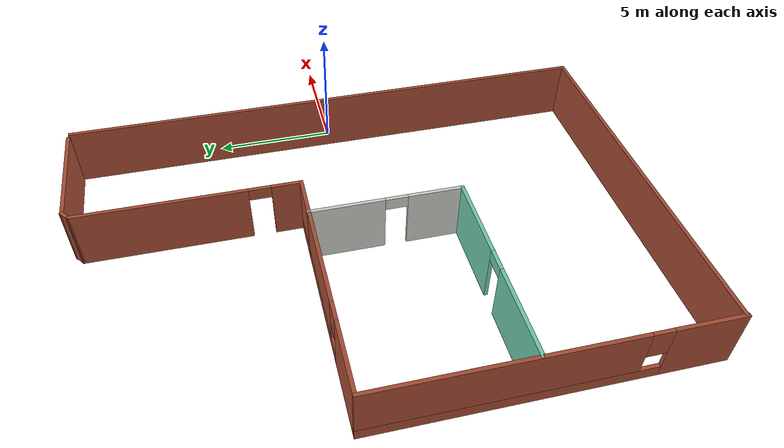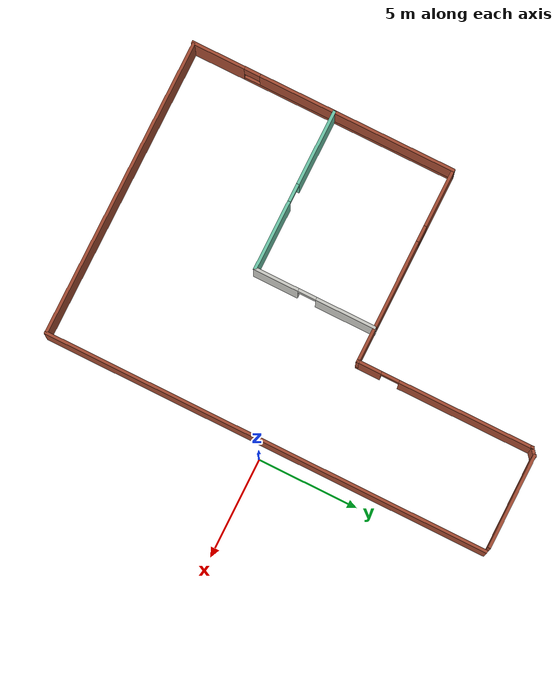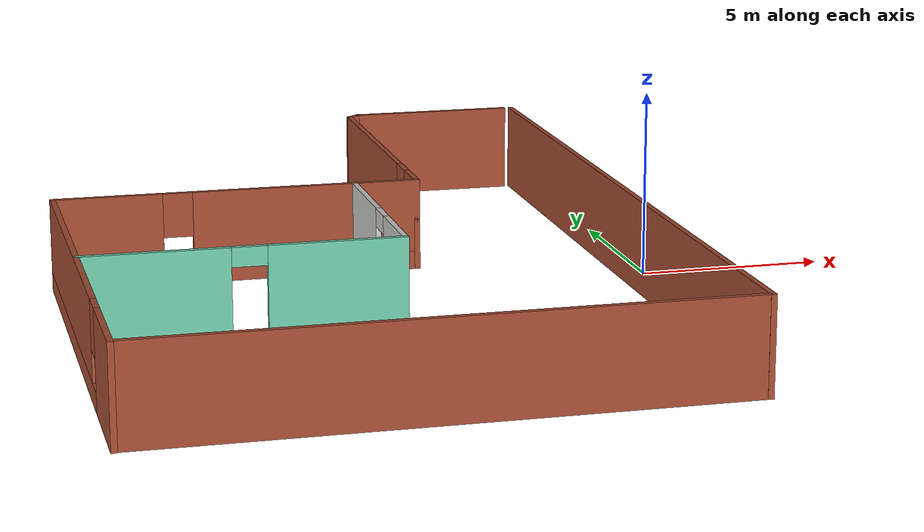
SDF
<?xml version='1.0'?>
<sdf version='1.6'>
  <model name='floor'>
    <link name='Wall_1'>
      <pose frame=''>-3.26123 11.2097 0 0 -0 0</pose>
      <self_collide>0</self_collide>
      <kinematic>0</kinematic>
      <enable_wind>0</enable_wind>
      <visual name='Wall_1_Visual'>
        <pose frame=''>0 0 1.25 0 -0 0</pose>
        <geometry>
          <box>
            <size>4.75 0.15 2.5</size>
          </box>
        </geometry>
        <material>
          <script>
            <uri>file://media/materials/scripts/gazebo.material</uri>
            <name>Gazebo/Bricks</name>
          </script>
          <ambient>0.435294 0.796078 0.67451 1</ambient>
        </material>
        <meta>
          <layer>0</layer>
        </meta>
        <transparency>0</transparency>
        <cast_shadows>1</cast_shadows>
      </visual>
      <collision name='Wall_1_Collision'>
        <laser_retro>0</laser_retro>
        <max_contacts>10</max_contacts>
        <pose frame=''>0 0 1.25 0 -0 0</pose>
        <geometry>
          <box>
            <size>4.75 0.15 2.5</size>
          </box>
        </geometry>
        <surface>
          <friction>
            <ode>
              <mu>1</mu>
              <mu2>1</mu2>
              <fdir1>0 0 0</fdir1>
              <slip1>0</slip1>
              <slip2>0</slip2>
            </ode>
            <torsional>
              <coefficient>1</coefficient>
              <patch_radius>0</patch_radius>
              <surface_radius>0</surface_radius>
              <use_patch_radius>1</use_patch_radius>
              <ode>
                <slip>0</slip>
              </ode>
            </torsional>
          </friction>
          <bounce>
            <restitution_coefficient>0</restitution_coefficient>
            <threshold>1e+06</threshold>
          </bounce>
          <contact>
            <collide_without_contact>0</collide_without_contact>
            <collide_without_contact_bitmask>1</collide_without_contact_bitmask>
            <collide_bitmask>1</collide_bitmask>
            <ode>
              <soft_cfm>0</soft_cfm>
              <soft_erp>0.2</soft_erp>
              <kp>1e+13</kp>
              <kd>1</kd>
              <max_vel>0.01</max_vel>
              <min_depth>0</min_depth>
            </ode>
            <bullet>
              <split_impulse>1</split_impulse>
              <split_impulse_penetration_threshold>-0.01</split_impulse_penetration_threshold>
              <soft_cfm>0</soft_cfm>
              <soft_erp>0.2</soft_erp>
              <kp>1e+13</kp>
              <kd>1</kd>
            </bullet>
          </contact>
        </surface>
      </collision>
    </link>
    <link name='Wall_10'>
      <pose frame=''>-5.71122 11.0847 0 0 -0 0.694738</pose>
      <self_collide>0</self_collide>
      <kinematic>0</kinematic>
      <enable_wind>0</enable_wind>
      <visual name='Wall_10_Visual'>
        <pose frame=''>0 0 1.25 0 -0 0</pose>
        <geometry>
          <box>
            <size>0.540512 0.15 2.5</size>
          </box>
        </geometry>
        <material>
          <script>
            <uri>file://media/materials/scripts/gazebo.material</uri>
            <name>Gazebo/Bricks</name>
          </script>
          <ambient>0.435294 0.796078 0.67451 1</ambient>
        </material>
        <meta>
          <layer>0</layer>
        </meta>
        <transparency>0</transparency>
        <cast_shadows>1</cast_shadows>
      </visual>
      <collision name='Wall_10_Collision'>
        <laser_retro>0</laser_retro>
        <max_contacts>10</max_contacts>
        <pose frame=''>0 0 1.25 0 -0 0</pose>
        <geometry>
          <box>
            <size>0.540512 0.15 2.5</size>
          </box>
        </geometry>
        <surface>
          <friction>
            <ode>
              <mu>1</mu>
              <mu2>1</mu2>
              <fdir1>0 0 0</fdir1>
              <slip1>0</slip1>
              <slip2>0</slip2>
            </ode>
            <torsional>
              <coefficient>1</coefficient>
              <patch_radius>0</patch_radius>
              <surface_radius>0</surface_radius>
              <use_patch_radius>1</use_patch_radius>
              <ode>
                <slip>0</slip>
              </ode>
            </torsional>
          </friction>
          <bounce>
            <restitution_coefficient>0</restitution_coefficient>
            <threshold>1e+06</threshold>
          </bounce>
          <contact>
            <collide_without_contact>0</collide_without_contact>
            <collide_without_contact_bitmask>1</collide_without_contact_bitmask>
            <collide_bitmask>1</collide_bitmask>
            <ode>
              <soft_cfm>0</soft_cfm>
              <soft_erp>0.2</soft_erp>
              <kp>1e+13</kp>
              <kd>1</kd>
              <max_vel>0.01</max_vel>
              <min_depth>0</min_depth>
            </ode>
            <bullet>
              <split_impulse>1</split_impulse>
              <split_impulse_penetration_threshold>-0.01</split_impulse_penetration_threshold>
              <soft_cfm>0</soft_cfm>
              <soft_erp>0.2</soft_erp>
              <kp>1e+13</kp>
              <kd>1</kd>
            </bullet>
          </contact>
        </surface>
      </collision>
    </link>
    <link name='Wall_12'>
      <pose frame=''>-7.58378 -0.937122 0 0 0 -1.5708</pose>
      <self_collide>0</self_collide>
      <kinematic>0</kinematic>
      <enable_wind>0</enable_wind>
      <visual name='Wall_12_Visual_0'>
        <pose frame=''>-1.59262 0 1.25 0 -0 0</pose>
        <geometry>
          <box>
            <size>3.06475 0.15 2.5</size>
          </box>
        </geometry>
        <material>
          <script>
            <uri>file://media/materials/scripts/gazebo.material</uri>
            <name>Gazebo/CeilingTiled</name>
          </script>
          <ambient>0.435294 0.796078 0.67451 1</ambient>
        </material>
        <meta>
          <layer>0</layer>
        </meta>
        <transparency>0</transparency>
        <cast_shadows>1</cast_shadows>
      </visual>
      <visual name='Wall_12_Visual_1'>
        <pose frame=''>1.98238 0 1.25 0 -0 0</pose>
        <geometry>
          <box>
            <size>2.28525 0.15 2.5</size>
          </box>
        </geometry>
        <material>
          <script>
            <uri>file://media/materials/scripts/gazebo.material</uri>
            <name>Gazebo/CeilingTiled</name>
          </script>
          <ambient>0.435294 0.796078 0.67451 1</ambient>
        </material>
        <meta>
          <layer>0</layer>
        </meta>
        <transparency>0</transparency>
        <cast_shadows>1</cast_shadows>
      </visual>
      <visual name='Wall_12_Visual_2'>
        <pose frame=''>0.389755 0 2.25 0 -0 0</pose>
        <geometry>
          <box>
            <size>0.9 0.15 0.5</size>
          </box>
        </geometry>
        <material>
          <script>
            <uri>file://media/materials/scripts/gazebo.material</uri>
            <name>Gazebo/CeilingTiled</name>
          </script>
          <ambient>0.435294 0.796078 0.67451 1</ambient>
        </material>
        <meta>
          <layer>0</layer>
        </meta>
        <transparency>0</transparency>
        <cast_shadows>1</cast_shadows>
      </visual>
      <collision name='Wall_12_Collision_0'>
        <laser_retro>0</laser_retro>
        <max_contacts>10</max_contacts>
        <pose frame=''>-1.59262 0 1.25 0 -0 0</pose>
        <geometry>
          <box>
            <size>3.06475 0.15 2.5</size>
          </box>
        </geometry>
        <surface>
          <friction>
            <ode>
              <mu>1</mu>
              <mu2>1</mu2>
              <fdir1>0 0 0</fdir1>
              <slip1>0</slip1>
              <slip2>0</slip2>
            </ode>
            <torsional>
              <coefficient>1</coefficient>
              <patch_radius>0</patch_radius>
              <surface_radius>0</surface_radius>
              <use_patch_radius>1</use_patch_radius>
              <ode>
                <slip>0</slip>
              </ode>
            </torsional>
          </friction>
          <bounce>
            <restitution_coefficient>0</restitution_coefficient>
            <threshold>1e+06</threshold>
          </bounce>
          <contact>
            <collide_without_contact>0</collide_without_contact>
            <collide_without_contact_bitmask>1</collide_without_contact_bitmask>
            <collide_bitmask>1</collide_bitmask>
            <ode>
              <soft_cfm>0</soft_cfm>
              <soft_erp>0.2</soft_erp>
              <kp>1e+13</kp>
              <kd>1</kd>
              <max_vel>0.01</max_vel>
              <min_depth>0</min_depth>
            </ode>
            <bullet>
              <split_impulse>1</split_impulse>
              <split_impulse_penetration_threshold>-0.01</split_impulse_penetration_threshold>
              <soft_cfm>0</soft_cfm>
              <soft_erp>0.2</soft_erp>
              <kp>1e+13</kp>
              <kd>1</kd>
            </bullet>
          </contact>
        </surface>
      </collision>
      <collision name='Wall_12_Collision_1'>
        <laser_retro>0</laser_retro>
        <max_contacts>10</max_contacts>
        <pose frame=''>1.98238 0 1.25 0 -0 0</pose>
        <geometry>
          <box>
            <size>2.28525 0.15 2.5</size>
          </box>
        </geometry>
        <surface>
          <friction>
            <ode>
              <mu>1</mu>
              <mu2>1</mu2>
              <fdir1>0 0 0</fdir1>
              <slip1>0</slip1>
              <slip2>0</slip2>
            </ode>
            <torsional>
              <coefficient>1</coefficient>
              <patch_radius>0</patch_radius>
              <surface_radius>0</surface_radius>
              <use_patch_radius>1</use_patch_radius>
              <ode>
                <slip>0</slip>
              </ode>
            </torsional>
          </friction>
          <bounce>
            <restitution_coefficient>0</restitution_coefficient>
            <threshold>1e+06</threshold>
          </bounce>
          <contact>
            <collide_without_contact>0</collide_without_contact>
            <collide_without_contact_bitmask>1</collide_without_contact_bitmask>
            <collide_bitmask>1</collide_bitmask>
            <ode>
              <soft_cfm>0</soft_cfm>
              <soft_erp>0.2</soft_erp>
              <kp>1e+13</kp>
              <kd>1</kd>
              <max_vel>0.01</max_vel>
              <min_depth>0</min_depth>
            </ode>
            <bullet>
              <split_impulse>1</split_impulse>
              <split_impulse_penetration_threshold>-0.01</split_impulse_penetration_threshold>
              <soft_cfm>0</soft_cfm>
              <soft_erp>0.2</soft_erp>
              <kp>1e+13</kp>
              <kd>1</kd>
            </bullet>
          </contact>
        </surface>
      </collision>
      <collision name='Wall_12_Collision_2'>
        <laser_retro>0</laser_retro>
        <max_contacts>10</max_contacts>
        <pose frame=''>0.389755 0 2.25 0 -0 0</pose>
        <geometry>
          <box>
            <size>0.9 0.15 0.5</size>
          </box>
        </geometry>
        <surface>
          <friction>
            <ode>
              <mu>1</mu>
              <mu2>1</mu2>
              <fdir1>0 0 0</fdir1>
              <slip1>0</slip1>
              <slip2>0</slip2>
            </ode>
            <torsional>
              <coefficient>1</coefficient>
              <patch_radius>0</patch_radius>
              <surface_radius>0</surface_radius>
              <use_patch_radius>1</use_patch_radius>
              <ode>
                <slip>0</slip>
              </ode>
            </torsional>
          </friction>
          <bounce>
            <restitution_coefficient>0</restitution_coefficient>
            <threshold>1e+06</threshold>
          </bounce>
          <contact>
            <collide_without_contact>0</collide_without_contact>
            <collide_without_contact_bitmask>1</collide_without_contact_bitmask>
            <collide_bitmask>1</collide_bitmask>
            <ode>
              <soft_cfm>0</soft_cfm>
              <soft_erp>0.2</soft_erp>
              <kp>1e+13</kp>
              <kd>1</kd>
              <max_vel>0.01</max_vel>
              <min_depth>0</min_depth>
            </ode>
            <bullet>
              <split_impulse>1</split_impulse>
              <split_impulse_penetration_threshold>-0.01</split_impulse_penetration_threshold>
              <soft_cfm>0</soft_cfm>
              <soft_erp>0.2</soft_erp>
              <kp>1e+13</kp>
              <kd>1</kd>
            </bullet>
          </contact>
        </surface>
      </collision>
    </link>
    <link name='Wall_15'>
      <pose frame=''>-11.6338 -3.98712 0 0 -0 3.14159</pose>
      <self_collide>0</self_collide>
      <kinematic>0</kinematic>
      <enable_wind>0</enable_wind>
      <visual name='Wall_15_Visual_0'>
        <pose frame=''>-2.35227 0 1.25 0 -0 0</pose>
        <geometry>
          <box>
            <size>3.54546 0.15 2.5</size>
          </box>
        </geometry>
        <material>
          <script>
            <uri>file://media/materials/scripts/gazebo.material</uri>
            <name>Gazebo/Grey</name>
          </script>
          <ambient>0.435294 0.796078 0.67451 1</ambient>
        </material>
        <meta>
          <layer>0</layer>
        </meta>
        <transparency>0</transparency>
        <cast_shadows>1</cast_shadows>
      </visual>
      <visual name='Wall_15_Visual_1'>
        <pose frame=''>2.22273 0 1.25 0 -0 0</pose>
        <geometry>
          <box>
            <size>3.80455 0.15 2.5</size>
          </box>
        </geometry>
        <material>
          <script>
            <uri>file://media/materials/scripts/gazebo.material</uri>
            <name>Gazebo/Grey</name>
          </script>
          <ambient>0.435294 0.796078 0.67451 1</ambient>
        </material>
        <meta>
          <layer>0</layer>
        </meta>
        <transparency>0</transparency>
        <cast_shadows>1</cast_shadows>
      </visual>
      <visual name='Wall_15_Visual_2'>
        <pose frame=''>-0.129545 0 2.25 0 -0 0</pose>
        <geometry>
          <box>
            <size>0.9 0.15 0.5</size>
          </box>
        </geometry>
        <material>
          <script>
            <uri>file://media/materials/scripts/gazebo.material</uri>
            <name>Gazebo/Grey</name>
          </script>
          <ambient>0.435294 0.796078 0.67451 1</ambient>
        </material>
        <meta>
          <layer>0</layer>
        </meta>
        <transparency>0</transparency>
        <cast_shadows>1</cast_shadows>
      </visual>
      <collision name='Wall_15_Collision_0'>
        <laser_retro>0</laser_retro>
        <max_contacts>10</max_contacts>
        <pose frame=''>-2.35227 0 1.25 0 -0 0</pose>
        <geometry>
          <box>
            <size>3.54546 0.15 2.5</size>
          </box>
        </geometry>
        <surface>
          <friction>
            <ode>
              <mu>1</mu>
              <mu2>1</mu2>
              <fdir1>0 0 0</fdir1>
              <slip1>0</slip1>
              <slip2>0</slip2>
            </ode>
            <torsional>
              <coefficient>1</coefficient>
              <patch_radius>0</patch_radius>
              <surface_radius>0</surface_radius>
              <use_patch_radius>1</use_patch_radius>
              <ode>
                <slip>0</slip>
              </ode>
            </torsional>
          </friction>
          <bounce>
            <restitution_coefficient>0</restitution_coefficient>
            <threshold>1e+06</threshold>
          </bounce>
          <contact>
            <collide_without_contact>0</collide_without_contact>
            <collide_without_contact_bitmask>1</collide_without_contact_bitmask>
            <collide_bitmask>1</collide_bitmask>
            <ode>
              <soft_cfm>0</soft_cfm>
              <soft_erp>0.2</soft_erp>
              <kp>1e+13</kp>
              <kd>1</kd>
              <max_vel>0.01</max_vel>
              <min_depth>0</min_depth>
            </ode>
            <bullet>
              <split_impulse>1</split_impulse>
              <split_impulse_penetration_threshold>-0.01</split_impulse_penetration_threshold>
              <soft_cfm>0</soft_cfm>
              <soft_erp>0.2</soft_erp>
              <kp>1e+13</kp>
              <kd>1</kd>
            </bullet>
          </contact>
        </surface>
      </collision>
      <collision name='Wall_15_Collision_1'>
        <laser_retro>0</laser_retro>
        <max_contacts>10</max_contacts>
        <pose frame=''>2.22273 0 1.25 0 -0 0</pose>
        <geometry>
          <box>
            <size>3.80455 0.15 2.5</size>
          </box>
        </geometry>
        <surface>
          <friction>
            <ode>
              <mu>1</mu>
              <mu2>1</mu2>
              <fdir1>0 0 0</fdir1>
              <slip1>0</slip1>
              <slip2>0</slip2>
            </ode>
            <torsional>
              <coefficient>1</coefficient>
              <patch_radius>0</patch_radius>
              <surface_radius>0</surface_radius>
              <use_patch_radius>1</use_patch_radius>
              <ode>
                <slip>0</slip>
              </ode>
            </torsional>
          </friction>
          <bounce>
            <restitution_coefficient>0</restitution_coefficient>
            <threshold>1e+06</threshold>
          </bounce>
          <contact>
            <collide_without_contact>0</collide_without_contact>
            <collide_without_contact_bitmask>1</collide_without_contact_bitmask>
            <collide_bitmask>1</collide_bitmask>
            <ode>
              <soft_cfm>0</soft_cfm>
              <soft_erp>0.2</soft_erp>
              <kp>1e+13</kp>
              <kd>1</kd>
              <max_vel>0.01</max_vel>
              <min_depth>0</min_depth>
            </ode>
            <bullet>
              <split_impulse>1</split_impulse>
              <split_impulse_penetration_threshold>-0.01</split_impulse_penetration_threshold>
              <soft_cfm>0</soft_cfm>
              <soft_erp>0.2</soft_erp>
              <kp>1e+13</kp>
              <kd>1</kd>
            </bullet>
          </contact>
        </surface>
      </collision>
      <collision name='Wall_15_Collision_2'>
        <laser_retro>0</laser_retro>
        <max_contacts>10</max_contacts>
        <pose frame=''>-0.129545 0 2.25 0 -0 0</pose>
        <geometry>
          <box>
            <size>0.9 0.15 0.5</size>
          </box>
        </geometry>
        <surface>
          <friction>
            <ode>
              <mu>1</mu>
              <mu2>1</mu2>
              <fdir1>0 0 0</fdir1>
              <slip1>0</slip1>
              <slip2>0</slip2>
            </ode>
            <torsional>
              <coefficient>1</coefficient>
              <patch_radius>0</patch_radius>
              <surface_radius>0</surface_radius>
              <use_patch_radius>1</use_patch_radius>
              <ode>
                <slip>0</slip>
              </ode>
            </torsional>
          </friction>
          <bounce>
            <restitution_coefficient>0</restitution_coefficient>
            <threshold>1e+06</threshold>
          </bounce>
          <contact>
            <collide_without_contact>0</collide_without_contact>
            <collide_without_contact_bitmask>1</collide_without_contact_bitmask>
            <collide_bitmask>1</collide_bitmask>
            <ode>
              <soft_cfm>0</soft_cfm>
              <soft_erp>0.2</soft_erp>
              <kp>1e+13</kp>
              <kd>1</kd>
              <max_vel>0.01</max_vel>
              <min_depth>0</min_depth>
            </ode>
            <bullet>
              <split_impulse>1</split_impulse>
              <split_impulse_penetration_threshold>-0.01</split_impulse_penetration_threshold>
              <soft_cfm>0</soft_cfm>
              <soft_erp>0.2</soft_erp>
              <kp>1e+13</kp>
              <kd>1</kd>
            </bullet>
          </contact>
        </surface>
      </collision>
    </link>
    <link name='Wall_1_clone'>
      <pose frame=''>-8.2177 -11.2047 0 0 -0 0</pose>
      <self_collide>0</self_collide>
      <kinematic>0</kinematic>
      <enable_wind>0</enable_wind>
      <gravity>1</gravity>
      <inertial>
        <mass>1</mass>
        <pose frame=''>0 0 0 0 -0 0</pose>
        <inertia>
          <ixx>1</ixx>
          <ixy>0</ixy>
          <ixz>0</ixz>
          <iyy>1</iyy>
          <iyz>0</iyz>
          <izz>1</izz>
        </inertia>
      </inertial>
      <visual name='Wall_1_Visual'>
        <pose frame=''>0 0 1.25 0 -0 0</pose>
        <geometry>
          <box>
            <size>15 0.15 2.5</size>
          </box>
        </geometry>
        <material>
          <script>
            <uri>file://media/materials/scripts/gazebo.material</uri>
            <name>Gazebo/Bricks</name>
          </script>
          <ambient>0.435 0.796 0.675 1</ambient>
          <shader type='vertex'>
            <normal_map>__default__</normal_map>
          </shader>
          <diffuse>1 1 1 1</diffuse>
          <specular>0.2 0.2 0.2 1</specular>
          <emissive>0 0 0 1</emissive>
        </material>
        <meta>
          <layer>0</layer>
        </meta>
        <transparency>0</transparency>
        <cast_shadows>1</cast_shadows>
      </visual>
      <collision name='Wall_1_Collision'>
        <laser_retro>0</laser_retro>
        <max_contacts>10</max_contacts>
        <pose frame=''>0 0 1.25 0 -0 0</pose>
        <geometry>
          <box>
            <size>15 0.15 2.5</size>
          </box>
        </geometry>
        <surface>
          <friction>
            <ode>
              <mu>1</mu>
              <mu2>1</mu2>
              <fdir1>0 0 0</fdir1>
              <slip1>0</slip1>
              <slip2>0</slip2>
            </ode>
            <torsional>
              <coefficient>1</coefficient>
              <patch_radius>0</patch_radius>
              <surface_radius>0</surface_radius>
              <use_patch_radius>1</use_patch_radius>
              <ode>
                <slip>0</slip>
              </ode>
            </torsional>
          </friction>
          <bounce>
            <restitution_coefficient>0</restitution_coefficient>
            <threshold>1e+06</threshold>
          </bounce>
          <contact>
            <collide_without_contact>0</collide_without_contact>
            <collide_without_contact_bitmask>1</collide_without_contact_bitmask>
            <collide_bitmask>1</collide_bitmask>
            <ode>
              <soft_cfm>0</soft_cfm>
              <soft_erp>0.2</soft_erp>
              <kp>1e+13</kp>
              <kd>1</kd>
              <max_vel>0.01</max_vel>
              <min_depth>0</min_depth>
            </ode>
            <bullet>
              <split_impulse>1</split_impulse>
              <split_impulse_penetration_threshold>-0.01</split_impulse_penetration_threshold>
              <soft_cfm>0</soft_cfm>
              <soft_erp>0.2</soft_erp>
              <kp>1e+13</kp>
              <kd>1</kd>
            </bullet>
          </contact>
        </surface>
      </collision>
    </link>
    <link name='Wall_2'>
      <pose frame=''>-0.689664 -0.033023 0 0 0 -1.5708</pose>
      <self_collide>0</self_collide>
      <kinematic>0</kinematic>
      <enable_wind>0</enable_wind>
      <inertial>
        <inertia>
          <ixx>0</ixx>
          <ixy>0</ixy>
          <ixz>0</ixz>
          <iyy>0</iyy>
          <iyz>0</iyz>
          <izz>0</izz>
        </inertia>
        <mass>0</mass>
        <pose frame=''>0 0 0 0 -0 0</pose>
      </inertial>
      <gravity>1</gravity>
      <visual name='Wall_2_Visual'>
        <pose frame=''>0 0 1.25 0 -0 0</pose>
        <geometry>
          <box>
            <size>22.5 0.15 2.5</size>
          </box>
        </geometry>
        <material>
          <script>
            <uri>file://media/materials/scripts/gazebo.material</uri>
            <name>Gazebo/Bricks</name>
          </script>
          <ambient>0.435 0.796 0.675 1</ambient>
          <shader type='vertex'>
            <normal_map>__default__</normal_map>
          </shader>
          <diffuse>1 1 1 1</diffuse>
          <specular>0.2 0.2 0.2 1</specular>
          <emissive>0 0 0 1</emissive>
        </material>
        <meta>
          <layer>0</layer>
        </meta>
        <transparency>0</transparency>
        <cast_shadows>1</cast_shadows>
      </visual>
      <collision name='Wall_2_Collision'>
        <laser_retro>0</laser_retro>
        <max_contacts>10</max_contacts>
        <pose frame=''>0 0 1.25 0 -0 0</pose>
        <geometry>
          <box>
            <size>22.5 0.15 2.5</size>
          </box>
        </geometry>
        <surface>
          <friction>
            <ode>
              <mu>1</mu>
              <mu2>1</mu2>
              <fdir1>0 0 0</fdir1>
              <slip1>0</slip1>
              <slip2>0</slip2>
            </ode>
            <torsional>
              <coefficient>1</coefficient>
              <patch_radius>0</patch_radius>
              <surface_radius>0</surface_radius>
              <use_patch_radius>1</use_patch_radius>
              <ode>
                <slip>0</slip>
              </ode>
            </torsional>
          </friction>
          <bounce>
            <restitution_coefficient>0</restitution_coefficient>
            <threshold>1e+06</threshold>
          </bounce>
          <contact>
            <collide_without_contact>0</collide_without_contact>
            <collide_without_contact_bitmask>1</collide_without_contact_bitmask>
            <collide_bitmask>1</collide_bitmask>
            <ode>
              <soft_cfm>0</soft_cfm>
              <soft_erp>0.2</soft_erp>
              <kp>1e+13</kp>
              <kd>1</kd>
              <max_vel>0.01</max_vel>
              <min_depth>0</min_depth>
            </ode>
            <bullet>
              <split_impulse>1</split_impulse>
              <split_impulse_penetration_threshold>-0.01</split_impulse_penetration_threshold>
              <soft_cfm>0</soft_cfm>
              <soft_erp>0.2</soft_erp>
              <kp>1e+13</kp>
              <kd>1</kd>
            </bullet>
          </contact>
        </surface>
      </collision>
    </link>
    <link name='Wall_6'>
      <pose frame=''>-15.7112 -4.56531 0 0 -0 1.5708</pose>
      <self_collide>0</self_collide>
      <kinematic>0</kinematic>
      <enable_wind>0</enable_wind>
      <visual name='Wall_6_Visual_0'>
        <pose frame=''>-5.38753 0 1.25 0 -0 0</pose>
        <geometry>
          <box>
            <size>2.72495 0.15 2.5</size>
          </box>
        </geometry>
        <material>
          <script>
            <uri>file://media/materials/scripts/gazebo.material</uri>
            <name>Gazebo/Bricks</name>
          </script>
          <ambient>0.435294 0.796078 0.67451 1</ambient>
        </material>
        <meta>
          <layer>0</layer>
        </meta>
        <transparency>0</transparency>
        <cast_shadows>1</cast_shadows>
      </visual>
      <visual name='Wall_6_Visual_1'>
        <pose frame=''>1.36247 0 0.25 0 -0 0</pose>
        <geometry>
          <box>
            <size>10.7751 0.15 0.5</size>
          </box>
        </geometry>
        <material>
          <script>
            <uri>file://media/materials/scripts/gazebo.material</uri>
            <name>Gazebo/Bricks</name>
          </script>
          <ambient>0.435294 0.796078 0.67451 1</ambient>
        </material>
        <meta>
          <layer>0</layer>
        </meta>
        <transparency>0</transparency>
        <cast_shadows>1</cast_shadows>
      </visual>
      <visual name='Wall_6_Visual_2'>
        <pose frame=''>1.76247 0 1.5 0 -0 0</pose>
        <geometry>
          <box>
            <size>9.97505 0.15 2</size>
          </box>
        </geometry>
        <material>
          <script>
            <uri>file://media/materials/scripts/gazebo.material</uri>
            <name>Gazebo/Bricks</name>
          </script>
          <ambient>0.435294 0.796078 0.67451 1</ambient>
        </material>
        <meta>
          <layer>0</layer>
        </meta>
        <transparency>0</transparency>
        <cast_shadows>1</cast_shadows>
      </visual>
      <visual name='Wall_6_Visual_3'>
        <pose frame=''>-3.62505 0 1.9 0 -0 0</pose>
        <geometry>
          <box>
            <size>0.8 0.15 1.2</size>
          </box>
        </geometry>
        <material>
          <script>
            <uri>file://media/materials/scripts/gazebo.material</uri>
            <name>Gazebo/Bricks</name>
          </script>
          <ambient>0.435294 0.796078 0.67451 1</ambient>
        </material>
        <meta>
          <layer>0</layer>
        </meta>
        <transparency>0</transparency>
        <cast_shadows>1</cast_shadows>
      </visual>
      <collision name='Wall_6_Collision_1'>
        <laser_retro>0</laser_retro>
        <max_contacts>10</max_contacts>
        <pose frame=''>1.36247 0 0.25 0 -0 0</pose>
        <geometry>
          <box>
            <size>10.7751 0.15 0.5</size>
          </box>
        </geometry>
        <surface>
          <friction>
            <ode>
              <mu>1</mu>
              <mu2>1</mu2>
              <fdir1>0 0 0</fdir1>
              <slip1>0</slip1>
              <slip2>0</slip2>
            </ode>
            <torsional>
              <coefficient>1</coefficient>
              <patch_radius>0</patch_radius>
              <surface_radius>0</surface_radius>
              <use_patch_radius>1</use_patch_radius>
              <ode>
                <slip>0</slip>
              </ode>
            </torsional>
          </friction>
          <bounce>
            <restitution_coefficient>0</restitution_coefficient>
            <threshold>1e+06</threshold>
          </bounce>
          <contact>
            <collide_without_contact>0</collide_without_contact>
            <collide_without_contact_bitmask>1</collide_without_contact_bitmask>
            <collide_bitmask>1</collide_bitmask>
            <ode>
              <soft_cfm>0</soft_cfm>
              <soft_erp>0.2</soft_erp>
              <kp>1e+13</kp>
              <kd>1</kd>
              <max_vel>0.01</max_vel>
              <min_depth>0</min_depth>
            </ode>
            <bullet>
              <split_impulse>1</split_impulse>
              <split_impulse_penetration_threshold>-0.01</split_impulse_penetration_threshold>
              <soft_cfm>0</soft_cfm>
              <soft_erp>0.2</soft_erp>
              <kp>1e+13</kp>
              <kd>1</kd>
            </bullet>
          </contact>
        </surface>
      </collision>
      <collision name='Wall_6_Collision_0'>
        <laser_retro>0</laser_retro>
        <max_contacts>10</max_contacts>
        <pose frame=''>-5.38753 0 1.25 0 -0 0</pose>
        <geometry>
          <box>
            <size>2.72495 0.15 2.5</size>
          </box>
        </geometry>
        <surface>
          <friction>
            <ode>
              <mu>1</mu>
              <mu2>1</mu2>
              <fdir1>0 0 0</fdir1>
              <slip1>0</slip1>
              <slip2>0</slip2>
            </ode>
            <torsional>
              <coefficient>1</coefficient>
              <patch_radius>0</patch_radius>
              <surface_radius>0</surface_radius>
              <use_patch_radius>1</use_patch_radius>
              <ode>
                <slip>0</slip>
              </ode>
            </torsional>
          </friction>
          <bounce>
            <restitution_coefficient>0</restitution_coefficient>
            <threshold>1e+06</threshold>
          </bounce>
          <contact>
            <collide_without_contact>0</collide_without_contact>
            <collide_without_contact_bitmask>1</collide_without_contact_bitmask>
            <collide_bitmask>1</collide_bitmask>
            <ode>
              <soft_cfm>0</soft_cfm>
              <soft_erp>0.2</soft_erp>
              <kp>1e+13</kp>
              <kd>1</kd>
              <max_vel>0.01</max_vel>
              <min_depth>0</min_depth>
            </ode>
            <bullet>
              <split_impulse>1</split_impulse>
              <split_impulse_penetration_threshold>-0.01</split_impulse_penetration_threshold>
              <soft_cfm>0</soft_cfm>
              <soft_erp>0.2</soft_erp>
              <kp>1e+13</kp>
              <kd>1</kd>
            </bullet>
          </contact>
        </surface>
      </collision>
      <collision name='Wall_6_Collision_2'>
        <laser_retro>0</laser_retro>
        <max_contacts>10</max_contacts>
        <pose frame=''>1.76247 0 1.5 0 -0 0</pose>
        <geometry>
          <box>
            <size>9.97505 0.15 2</size>
          </box>
        </geometry>
        <surface>
          <friction>
            <ode>
              <mu>1</mu>
              <mu2>1</mu2>
              <fdir1>0 0 0</fdir1>
              <slip1>0</slip1>
              <slip2>0</slip2>
            </ode>
            <torsional>
              <coefficient>1</coefficient>
              <patch_radius>0</patch_radius>
              <surface_radius>0</surface_radius>
              <use_patch_radius>1</use_patch_radius>
              <ode>
                <slip>0</slip>
              </ode>
            </torsional>
          </friction>
          <bounce>
            <restitution_coefficient>0</restitution_coefficient>
            <threshold>1e+06</threshold>
          </bounce>
          <contact>
            <collide_without_contact>0</collide_without_contact>
            <collide_without_contact_bitmask>1</collide_without_contact_bitmask>
            <collide_bitmask>1</collide_bitmask>
            <ode>
              <soft_cfm>0</soft_cfm>
              <soft_erp>0.2</soft_erp>
              <kp>1e+13</kp>
              <kd>1</kd>
              <max_vel>0.01</max_vel>
              <min_depth>0</min_depth>
            </ode>
            <bullet>
              <split_impulse>1</split_impulse>
              <split_impulse_penetration_threshold>-0.01</split_impulse_penetration_threshold>
              <soft_cfm>0</soft_cfm>
              <soft_erp>0.2</soft_erp>
              <kp>1e+13</kp>
              <kd>1</kd>
            </bullet>
          </contact>
        </surface>
      </collision>
      <collision name='Wall_6_Collision_3'>
        <laser_retro>0</laser_retro>
        <max_contacts>10</max_contacts>
        <pose frame=''>-3.62505 0 1.9 0 -0 0</pose>
        <geometry>
          <box>
            <size>0.8 0.15 1.2</size>
          </box>
        </geometry>
        <surface>
          <friction>
            <ode>
              <mu>1</mu>
              <mu2>1</mu2>
              <fdir1>0 0 0</fdir1>
              <slip1>0</slip1>
              <slip2>0</slip2>
            </ode>
            <torsional>
              <coefficient>1</coefficient>
              <patch_radius>0</patch_radius>
              <surface_radius>0</surface_radius>
              <use_patch_radius>1</use_patch_radius>
              <ode>
                <slip>0</slip>
              </ode>
            </torsional>
          </friction>
          <bounce>
            <restitution_coefficient>0</restitution_coefficient>
            <threshold>1e+06</threshold>
          </bounce>
          <contact>
            <collide_without_contact>0</collide_without_contact>
            <collide_without_contact_bitmask>1</collide_without_contact_bitmask>
            <collide_bitmask>1</collide_bitmask>
            <ode>
              <soft_cfm>0</soft_cfm>
              <soft_erp>0.2</soft_erp>
              <kp>1e+13</kp>
              <kd>1</kd>
              <max_vel>0.01</max_vel>
              <min_depth>0</min_depth>
            </ode>
            <bullet>
              <split_impulse>1</split_impulse>
              <split_impulse_penetration_threshold>-0.01</split_impulse_penetration_threshold>
              <soft_cfm>0</soft_cfm>
              <soft_erp>0.2</soft_erp>
              <kp>1e+13</kp>
              <kd>1</kd>
            </bullet>
          </contact>
        </surface>
      </collision>
    </link>
    <link name='Wall_7'>
      <pose frame=''>-10.7862 2.10968 0 0 -0 0</pose>
      <self_collide>0</self_collide>
      <kinematic>0</kinematic>
      <enable_wind>0</enable_wind>
      <visual name='Wall_7_Visual_0'>
        <pose frame=''>-3.51411 0 1.25 0 -0 0</pose>
        <geometry>
          <box>
            <size>2.97177 0.15 2.5</size>
          </box>
        </geometry>
        <material>
          <script>
            <uri>file://media/materials/scripts/gazebo.material</uri>
            <name>Gazebo/Bricks</name>
          </script>
          <ambient>0.435294 0.796078 0.67451 1</ambient>
        </material>
        <meta>
          <layer>0</layer>
        </meta>
        <transparency>0</transparency>
        <cast_shadows>1</cast_shadows>
      </visual>
      <visual name='Wall_7_Visual_1'>
        <pose frame=''>1.48589 0 0.25 0 -0 0</pose>
        <geometry>
          <box>
            <size>7.02823 0.15 0.5</size>
          </box>
        </geometry>
        <material>
          <script>
            <uri>file://media/materials/scripts/gazebo.material</uri>
            <name>Gazebo/Bricks</name>
          </script>
          <ambient>0.435294 0.796078 0.67451 1</ambient>
        </material>
        <meta>
          <layer>0</layer>
        </meta>
        <transparency>0</transparency>
        <cast_shadows>1</cast_shadows>
      </visual>
      <visual name='Wall_7_Visual_2'>
        <pose frame=''>1.88589 0 1.5 0 -0 0</pose>
        <geometry>
          <box>
            <size>6.22823 0.15 2</size>
          </box>
        </geometry>
        <material>
          <script>
            <uri>file://media/materials/scripts/gazebo.material</uri>
            <name>Gazebo/Bricks</name>
          </script>
          <ambient>0.435294 0.796078 0.67451 1</ambient>
        </material>
        <meta>
          <layer>0</layer>
        </meta>
        <transparency>0</transparency>
        <cast_shadows>1</cast_shadows>
      </visual>
      <visual name='Wall_7_Visual_3'>
        <pose frame=''>-1.62823 0 1.9 0 -0 0</pose>
        <geometry>
          <box>
            <size>0.8 0.15 1.2</size>
          </box>
        </geometry>
        <material>
          <script>
            <uri>file://media/materials/scripts/gazebo.material</uri>
            <name>Gazebo/Bricks</name>
          </script>
          <ambient>0.435294 0.796078 0.67451 1</ambient>
        </material>
        <meta>
          <layer>0</layer>
        </meta>
        <transparency>0</transparency>
        <cast_shadows>1</cast_shadows>
      </visual>
      <collision name='Wall_7_Collision_0'>
        <laser_retro>0</laser_retro>
        <max_contacts>10</max_contacts>
        <pose frame=''>-3.51411 0 1.25 0 -0 0</pose>
        <geometry>
          <box>
            <size>2.97177 0.15 2.5</size>
          </box>
        </geometry>
        <surface>
          <friction>
            <ode>
              <mu>1</mu>
              <mu2>1</mu2>
              <fdir1>0 0 0</fdir1>
              <slip1>0</slip1>
              <slip2>0</slip2>
            </ode>
            <torsional>
              <coefficient>1</coefficient>
              <patch_radius>0</patch_radius>
              <surface_radius>0</surface_radius>
              <use_patch_radius>1</use_patch_radius>
              <ode>
                <slip>0</slip>
              </ode>
            </torsional>
          </friction>
          <bounce>
            <restitution_coefficient>0</restitution_coefficient>
            <threshold>1e+06</threshold>
          </bounce>
          <contact>
            <collide_without_contact>0</collide_without_contact>
            <collide_without_contact_bitmask>1</collide_without_contact_bitmask>
            <collide_bitmask>1</collide_bitmask>
            <ode>
              <soft_cfm>0</soft_cfm>
              <soft_erp>0.2</soft_erp>
              <kp>1e+13</kp>
              <kd>1</kd>
              <max_vel>0.01</max_vel>
              <min_depth>0</min_depth>
            </ode>
            <bullet>
              <split_impulse>1</split_impulse>
              <split_impulse_penetration_threshold>-0.01</split_impulse_penetration_threshold>
              <soft_cfm>0</soft_cfm>
              <soft_erp>0.2</soft_erp>
              <kp>1e+13</kp>
              <kd>1</kd>
            </bullet>
          </contact>
        </surface>
      </collision>
      <collision name='Wall_7_Collision_1'>
        <laser_retro>0</laser_retro>
        <max_contacts>10</max_contacts>
        <pose frame=''>1.48589 0 0.25 0 -0 0</pose>
        <geometry>
          <box>
            <size>7.02823 0.15 0.5</size>
          </box>
        </geometry>
        <surface>
          <friction>
            <ode>
              <mu>1</mu>
              <mu2>1</mu2>
              <fdir1>0 0 0</fdir1>
              <slip1>0</slip1>
              <slip2>0</slip2>
            </ode>
            <torsional>
              <coefficient>1</coefficient>
              <patch_radius>0</patch_radius>
              <surface_radius>0</surface_radius>
              <use_patch_radius>1</use_patch_radius>
              <ode>
                <slip>0</slip>
              </ode>
            </torsional>
          </friction>
          <bounce>
            <restitution_coefficient>0</restitution_coefficient>
            <threshold>1e+06</threshold>
          </bounce>
          <contact>
            <collide_without_contact>0</collide_without_contact>
            <collide_without_contact_bitmask>1</collide_without_contact_bitmask>
            <collide_bitmask>1</collide_bitmask>
            <ode>
              <soft_cfm>0</soft_cfm>
              <soft_erp>0.2</soft_erp>
              <kp>1e+13</kp>
              <kd>1</kd>
              <max_vel>0.01</max_vel>
              <min_depth>0</min_depth>
            </ode>
            <bullet>
              <split_impulse>1</split_impulse>
              <split_impulse_penetration_threshold>-0.01</split_impulse_penetration_threshold>
              <soft_cfm>0</soft_cfm>
              <soft_erp>0.2</soft_erp>
              <kp>1e+13</kp>
              <kd>1</kd>
            </bullet>
          </contact>
        </surface>
      </collision>
      <collision name='Wall_7_Collision_2'>
        <laser_retro>0</laser_retro>
        <max_contacts>10</max_contacts>
        <pose frame=''>1.88589 0 1.5 0 -0 0</pose>
        <geometry>
          <box>
            <size>6.22823 0.15 2</size>
          </box>
        </geometry>
        <surface>
          <friction>
            <ode>
              <mu>1</mu>
              <mu2>1</mu2>
              <fdir1>0 0 0</fdir1>
              <slip1>0</slip1>
              <slip2>0</slip2>
            </ode>
            <torsional>
              <coefficient>1</coefficient>
              <patch_radius>0</patch_radius>
              <surface_radius>0</surface_radius>
              <use_patch_radius>1</use_patch_radius>
              <ode>
                <slip>0</slip>
              </ode>
            </torsional>
          </friction>
          <bounce>
            <restitution_coefficient>0</restitution_coefficient>
            <threshold>1e+06</threshold>
          </bounce>
          <contact>
            <collide_without_contact>0</collide_without_contact>
            <collide_without_contact_bitmask>1</collide_without_contact_bitmask>
            <collide_bitmask>1</collide_bitmask>
            <ode>
              <soft_cfm>0</soft_cfm>
              <soft_erp>0.2</soft_erp>
              <kp>1e+13</kp>
              <kd>1</kd>
              <max_vel>0.01</max_vel>
              <min_depth>0</min_depth>
            </ode>
            <bullet>
              <split_impulse>1</split_impulse>
              <split_impulse_penetration_threshold>-0.01</split_impulse_penetration_threshold>
              <soft_cfm>0</soft_cfm>
              <soft_erp>0.2</soft_erp>
              <kp>1e+13</kp>
              <kd>1</kd>
            </bullet>
          </contact>
        </surface>
      </collision>
      <collision name='Wall_7_Collision_3'>
        <laser_retro>0</laser_retro>
        <max_contacts>10</max_contacts>
        <pose frame=''>-1.62823 0 1.9 0 -0 0</pose>
        <geometry>
          <box>
            <size>0.8 0.15 1.2</size>
          </box>
        </geometry>
        <surface>
          <friction>
            <ode>
              <mu>1</mu>
              <mu2>1</mu2>
              <fdir1>0 0 0</fdir1>
              <slip1>0</slip1>
              <slip2>0</slip2>
            </ode>
            <torsional>
              <coefficient>1</coefficient>
              <patch_radius>0</patch_radius>
              <surface_radius>0</surface_radius>
              <use_patch_radius>1</use_patch_radius>
              <ode>
                <slip>0</slip>
              </ode>
            </torsional>
          </friction>
          <bounce>
            <restitution_coefficient>0</restitution_coefficient>
            <threshold>1e+06</threshold>
          </bounce>
          <contact>
            <collide_without_contact>0</collide_without_contact>
            <collide_without_contact_bitmask>1</collide_without_contact_bitmask>
            <collide_bitmask>1</collide_bitmask>
            <ode>
              <soft_cfm>0</soft_cfm>
              <soft_erp>0.2</soft_erp>
              <kp>1e+13</kp>
              <kd>1</kd>
              <max_vel>0.01</max_vel>
              <min_depth>0</min_depth>
            </ode>
            <bullet>
              <split_impulse>1</split_impulse>
              <split_impulse_penetration_threshold>-0.01</split_impulse_penetration_threshold>
              <soft_cfm>0</soft_cfm>
              <soft_erp>0.2</soft_erp>
              <kp>1e+13</kp>
              <kd>1</kd>
            </bullet>
          </contact>
        </surface>
      </collision>
    </link>
    <link name='Wall_9'>
      <pose frame=''>-5.86123 6.53468 0 0 -0 1.5708</pose>
      <self_collide>0</self_collide>
      <kinematic>0</kinematic>
      <enable_wind>0</enable_wind>
      <visual name='Wall_9_Visual_0'>
        <pose frame=''>-3.86428 0 1.25 0 -0 0</pose>
        <geometry>
          <box>
            <size>1.27144 0.15 2.5</size>
          </box>
        </geometry>
        <material>
          <script>
            <uri>file://media/materials/scripts/gazebo.material</uri>
            <name>Gazebo/Bricks</name>
          </script>
          <ambient>0.435294 0.796078 0.67451 1</ambient>
        </material>
        <meta>
          <layer>0</layer>
        </meta>
        <transparency>0</transparency>
        <cast_shadows>1</cast_shadows>
      </visual>
      <visual name='Wall_9_Visual_1'>
        <pose frame=''>1.08572 0 1.25 0 -0 0</pose>
        <geometry>
          <box>
            <size>6.82856 0.15 2.5</size>
          </box>
        </geometry>
        <material>
          <script>
            <uri>file://media/materials/scripts/gazebo.material</uri>
            <name>Gazebo/Bricks</name>
          </script>
          <ambient>0.435294 0.796078 0.67451 1</ambient>
        </material>
        <meta>
          <layer>0</layer>
        </meta>
        <transparency>0</transparency>
        <cast_shadows>1</cast_shadows>
      </visual>
      <visual name='Wall_9_Visual_2'>
        <pose frame=''>-2.77856 0 2.25 0 -0 0</pose>
        <geometry>
          <box>
            <size>0.9 0.15 0.5</size>
          </box>
        </geometry>
        <material>
          <script>
            <uri>file://media/materials/scripts/gazebo.material</uri>
            <name>Gazebo/Bricks</name>
          </script>
          <ambient>0.435294 0.796078 0.67451 1</ambient>
        </material>
        <meta>
          <layer>0</layer>
        </meta>
        <transparency>0</transparency>
        <cast_shadows>1</cast_shadows>
      </visual>
      <collision name='Wall_9_Collision_0'>
        <laser_retro>0</laser_retro>
        <max_contacts>10</max_contacts>
        <pose frame=''>-3.86428 0 1.25 0 -0 0</pose>
        <geometry>
          <box>
            <size>1.27144 0.15 2.5</size>
          </box>
        </geometry>
        <surface>
          <friction>
            <ode>
              <mu>1</mu>
              <mu2>1</mu2>
              <fdir1>0 0 0</fdir1>
              <slip1>0</slip1>
              <slip2>0</slip2>
            </ode>
            <torsional>
              <coefficient>1</coefficient>
              <patch_radius>0</patch_radius>
              <surface_radius>0</surface_radius>
              <use_patch_radius>1</use_patch_radius>
              <ode>
                <slip>0</slip>
              </ode>
            </torsional>
          </friction>
          <bounce>
            <restitution_coefficient>0</restitution_coefficient>
            <threshold>1e+06</threshold>
          </bounce>
          <contact>
            <collide_without_contact>0</collide_without_contact>
            <collide_without_contact_bitmask>1</collide_without_contact_bitmask>
            <collide_bitmask>1</collide_bitmask>
            <ode>
              <soft_cfm>0</soft_cfm>
              <soft_erp>0.2</soft_erp>
              <kp>1e+13</kp>
              <kd>1</kd>
              <max_vel>0.01</max_vel>
              <min_depth>0</min_depth>
            </ode>
            <bullet>
              <split_impulse>1</split_impulse>
              <split_impulse_penetration_threshold>-0.01</split_impulse_penetration_threshold>
              <soft_cfm>0</soft_cfm>
              <soft_erp>0.2</soft_erp>
              <kp>1e+13</kp>
              <kd>1</kd>
            </bullet>
          </contact>
        </surface>
      </collision>
      <collision name='Wall_9_Collision_1'>
        <laser_retro>0</laser_retro>
        <max_contacts>10</max_contacts>
        <pose frame=''>1.08572 0 1.25 0 -0 0</pose>
        <geometry>
          <box>
            <size>6.82856 0.15 2.5</size>
          </box>
        </geometry>
        <surface>
          <friction>
            <ode>
              <mu>1</mu>
              <mu2>1</mu2>
              <fdir1>0 0 0</fdir1>
              <slip1>0</slip1>
              <slip2>0</slip2>
            </ode>
            <torsional>
              <coefficient>1</coefficient>
              <patch_radius>0</patch_radius>
              <surface_radius>0</surface_radius>
              <use_patch_radius>1</use_patch_radius>
              <ode>
                <slip>0</slip>
              </ode>
            </torsional>
          </friction>
          <bounce>
            <restitution_coefficient>0</restitution_coefficient>
            <threshold>1e+06</threshold>
          </bounce>
          <contact>
            <collide_without_contact>0</collide_without_contact>
            <collide_without_contact_bitmask>1</collide_without_contact_bitmask>
            <collide_bitmask>1</collide_bitmask>
            <ode>
              <soft_cfm>0</soft_cfm>
              <soft_erp>0.2</soft_erp>
              <kp>1e+13</kp>
              <kd>1</kd>
              <max_vel>0.01</max_vel>
              <min_depth>0</min_depth>
            </ode>
            <bullet>
              <split_impulse>1</split_impulse>
              <split_impulse_penetration_threshold>-0.01</split_impulse_penetration_threshold>
              <soft_cfm>0</soft_cfm>
              <soft_erp>0.2</soft_erp>
              <kp>1e+13</kp>
              <kd>1</kd>
            </bullet>
          </contact>
        </surface>
      </collision>
      <collision name='Wall_9_Collision_2'>
        <laser_retro>0</laser_retro>
        <max_contacts>10</max_contacts>
        <pose frame=''>-2.77856 0 2.25 0 -0 0</pose>
        <geometry>
          <box>
            <size>0.9 0.15 0.5</size>
          </box>
        </geometry>
        <surface>
          <friction>
            <ode>
              <mu>1</mu>
              <mu2>1</mu2>
              <fdir1>0 0 0</fdir1>
              <slip1>0</slip1>
              <slip2>0</slip2>
            </ode>
            <torsional>
              <coefficient>1</coefficient>
              <patch_radius>0</patch_radius>
              <surface_radius>0</surface_radius>
              <use_patch_radius>1</use_patch_radius>
              <ode>
                <slip>0</slip>
              </ode>
            </torsional>
          </friction>
          <bounce>
            <restitution_coefficient>0</restitution_coefficient>
            <threshold>1e+06</threshold>
          </bounce>
          <contact>
            <collide_without_contact>0</collide_without_contact>
            <collide_without_contact_bitmask>1</collide_without_contact_bitmask>
            <collide_bitmask>1</collide_bitmask>
            <ode>
              <soft_cfm>0</soft_cfm>
              <soft_erp>0.2</soft_erp>
              <kp>1e+13</kp>
              <kd>1</kd>
              <max_vel>0.01</max_vel>
              <min_depth>0</min_depth>
            </ode>
            <bullet>
              <split_impulse>1</split_impulse>
              <split_impulse_penetration_threshold>-0.01</split_impulse_penetration_threshold>
              <soft_cfm>0</soft_cfm>
              <soft_erp>0.2</soft_erp>
              <kp>1e+13</kp>
              <kd>1</kd>
            </bullet>
          </contact>
        </surface>
      </collision>
    </link>
    <static>1</static>
    <allow_auto_disable>1</allow_auto_disable>
  </model>
</sdf>
